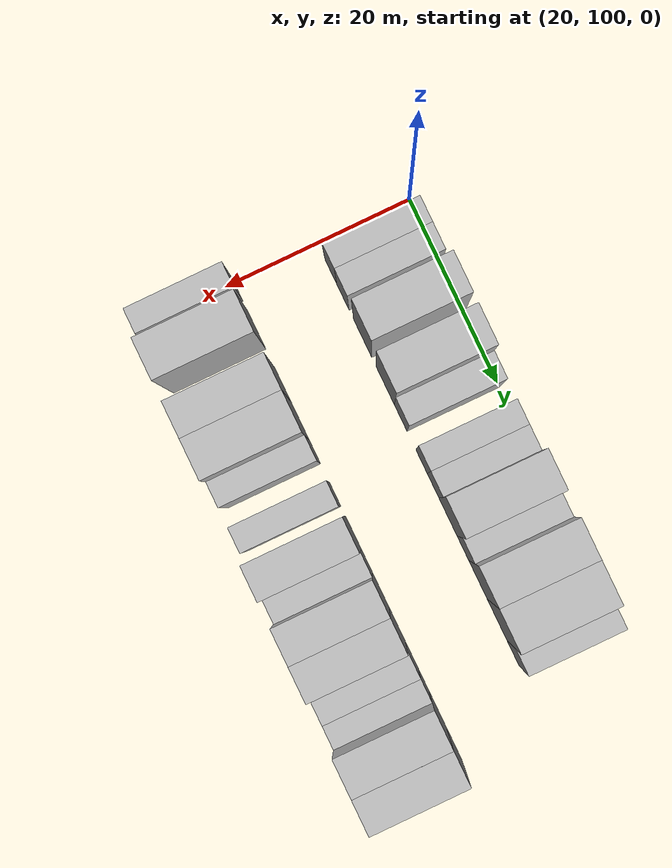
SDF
<sdf version="1.6">
 <world name="default">
  <model name="building_79">
   <static>1</static>
   <pose>25.0000 103.1300 0 0.000000 0.000000 0.000000</pose>
   <link name="link">
    <pose>0 0 3.00 0 0 0</pose>
    <collision name="collision"><geometry><box><size>10.0000 2.6886 6.0000</size></box></geometry></collision>
    <visual name="visual">
     <cast_shadows>0</cast_shadows>
     <geometry><box><size>10.0000 2.6886 6.0000</size></box></geometry>
     <material>
      <script>
       <uri>model://HANNAS_wall/materials/scripts</uri>
       <uri>model://HANNAS_wall/materials/textures</uri>
       <name>vrc/HANNAS_wall</name>
      </script>
     </material>
    </visual>
   </link>
  </model>
  <model name="building_80">
   <static>1</static>
   <pose>25.0000 105.8690 0 0.000000 0.000000 0.000000</pose>
   <link name="link">
    <pose>0 0 3.00 0 0 0</pose>
    <collision name="collision"><geometry><box><size>10.0000 2.7893 6.0000</size></box></geometry></collision>
    <visual name="visual">
     <cast_shadows>0</cast_shadows>
     <geometry><box><size>10.0000 2.7893 6.0000</size></box></geometry>
     <material>
      <script>
       <uri>model://HANNAS_wall/materials/scripts</uri>
       <uri>model://HANNAS_wall/materials/textures</uri>
       <name>vrc/HANNAS_wall</name>
      </script>
     </material>
    </visual>
   </link>
  </model>
  <model name="building_81">
   <static>1</static>
   <pose>25.0000 110.3339 0 0.000000 0.000000 0.000000</pose>
   <link name="link">
    <pose>0 0 4.50 0 0 0</pose>
    <collision name="collision"><geometry><box><size>10.0000 4.1406 9.0000</size></box></geometry></collision>
    <visual name="visual">
     <cast_shadows>0</cast_shadows>
     <geometry><box><size>10.0000 4.1406 9.0000</size></box></geometry>
     <material>
      <script>
       <uri>model://HANNAS_wall/materials/scripts</uri>
       <uri>model://HANNAS_wall/materials/textures</uri>
       <name>vrc/HANNAS_wall</name>
      </script>
     </material>
    </visual>
   </link>
  </model>
  <model name="building_82">
   <static>1</static>
   <pose>25.0000 115.4759 0 0.000000 0.000000 0.000000</pose>
   <link name="link">
    <pose>0 0 4.50 0 0 0</pose>
    <collision name="collision"><geometry><box><size>10.0000 4.1433 9.0000</size></box></geometry></collision>
    <visual name="visual">
     <cast_shadows>0</cast_shadows>
     <geometry><box><size>10.0000 4.1433 9.0000</size></box></geometry>
     <material>
      <script>
       <uri>model://HANNAS_wall/materials/scripts</uri>
       <uri>model://HANNAS_wall/materials/textures</uri>
       <name>vrc/HANNAS_wall</name>
      </script>
     </material>
    </visual>
   </link>
  </model>
  <model name="building_83">
   <static>1</static>
   <pose>25.0000 118.9860 0 0.000000 0.000000 0.000000</pose>
   <link name="link">
    <pose>0 0 3.00 0 0 0</pose>
    <collision name="collision"><geometry><box><size>10.0000 2.8769 6.0000</size></box></geometry></collision>
    <visual name="visual">
     <cast_shadows>0</cast_shadows>
     <geometry><box><size>10.0000 2.8769 6.0000</size></box></geometry>
     <material>
      <script>
       <uri>model://HANNAS_wall/materials/scripts</uri>
       <uri>model://HANNAS_wall/materials/textures</uri>
       <name>vrc/HANNAS_wall</name>
      </script>
     </material>
    </visual>
   </link>
  </model>
  <model name="building_84">
   <static>1</static>
   <pose>25.0000 123.7217 0 0.000000 0.000000 0.000000</pose>
   <link name="link">
    <pose>0 0 3.00 0 0 0</pose>
    <collision name="collision"><geometry><box><size>10.0000 2.5944 6.0000</size></box></geometry></collision>
    <visual name="visual">
     <cast_shadows>0</cast_shadows>
     <geometry><box><size>10.0000 2.5944 6.0000</size></box></geometry>
     <material>
      <script>
       <uri>model://HANNAS_wall/materials/scripts</uri>
       <uri>model://HANNAS_wall/materials/textures</uri>
       <name>vrc/HANNAS_wall</name>
      </script>
     </material>
    </visual>
   </link>
  </model>
  <model name="building_85">
   <static>1</static>
   <pose>25.0000 126.3316 0 0.000000 0.000000 0.000000</pose>
   <link name="link">
    <pose>0 0 3.00 0 0 0</pose>
    <collision name="collision"><geometry><box><size>10.0000 2.6255 6.0000</size></box></geometry></collision>
    <visual name="visual">
     <cast_shadows>0</cast_shadows>
     <geometry><box><size>10.0000 2.6255 6.0000</size></box></geometry>
     <material>
      <script>
       <uri>model://HANNAS_wall/materials/scripts</uri>
       <uri>model://HANNAS_wall/materials/textures</uri>
       <name>vrc/HANNAS_wall</name>
      </script>
     </material>
    </visual>
   </link>
  </model>
  <model name="building_86">
   <static>1</static>
   <pose>25.0000 129.7086 0 0.000000 0.000000 0.000000</pose>
   <link name="link">
    <pose>0 0 4.50 0 0 0</pose>
    <collision name="collision"><geometry><box><size>10.0000 4.1285 9.0000</size></box></geometry></collision>
    <visual name="visual">
     <cast_shadows>0</cast_shadows>
     <geometry><box><size>10.0000 4.1285 9.0000</size></box></geometry>
     <material>
      <script>
       <uri>model://HANNAS_wall/materials/scripts</uri>
       <uri>model://HANNAS_wall/materials/textures</uri>
       <name>vrc/HANNAS_wall</name>
      </script>
     </material>
    </visual>
   </link>
  </model>
  <model name="building_87">
   <static>1</static>
   <pose>25.0000 133.0878 0 0.000000 0.000000 0.000000</pose>
   <link name="link">
    <pose>0 0 3.00 0 0 0</pose>
    <collision name="collision"><geometry><box><size>10.0000 2.6299 6.0000</size></box></geometry></collision>
    <visual name="visual">
     <cast_shadows>0</cast_shadows>
     <geometry><box><size>10.0000 2.6299 6.0000</size></box></geometry>
     <material>
      <script>
       <uri>model://HANNAS_wall/materials/scripts</uri>
       <uri>model://HANNAS_wall/materials/textures</uri>
       <name>vrc/HANNAS_wall</name>
      </script>
     </material>
    </visual>
   </link>
  </model>
  <model name="building_88">
   <static>1</static>
   <pose>25.0000 136.4914 0 0.000000 0.000000 0.000000</pose>
   <link name="link">
    <pose>0 0 4.50 0 0 0</pose>
    <collision name="collision"><geometry><box><size>10.0000 4.1773 9.0000</size></box></geometry></collision>
    <visual name="visual">
     <cast_shadows>0</cast_shadows>
     <geometry><box><size>10.0000 4.1773 9.0000</size></box></geometry>
     <material>
      <script>
       <uri>model://HANNAS_wall/materials/scripts</uri>
       <uri>model://HANNAS_wall/materials/textures</uri>
       <name>vrc/HANNAS_wall</name>
      </script>
     </material>
    </visual>
   </link>
  </model>
  <model name="building_89">
   <static>1</static>
   <pose>25.0000 140.8173 0 0.000000 0.000000 0.000000</pose>
   <link name="link">
    <pose>0 0 4.50 0 0 0</pose>
    <collision name="collision"><geometry><box><size>10.0000 4.4745 9.0000</size></box></geometry></collision>
    <visual name="visual">
     <cast_shadows>0</cast_shadows>
     <geometry><box><size>10.0000 4.4745 9.0000</size></box></geometry>
     <material>
      <script>
       <uri>model://HANNAS_wall/materials/scripts</uri>
       <uri>model://HANNAS_wall/materials/textures</uri>
       <name>vrc/HANNAS_wall</name>
      </script>
     </material>
    </visual>
   </link>
  </model>
  <model name="building_90">
   <static>1</static>
   <pose>25.0000 144.4199 0 0.000000 0.000000 0.000000</pose>
   <link name="link">
    <pose>0 0 3.00 0 0 0</pose>
    <collision name="collision"><geometry><box><size>10.0000 2.7306 6.0000</size></box></geometry></collision>
    <visual name="visual">
     <cast_shadows>0</cast_shadows>
     <geometry><box><size>10.0000 2.7306 6.0000</size></box></geometry>
     <material>
      <script>
       <uri>model://HANNAS_wall/materials/scripts</uri>
       <uri>model://HANNAS_wall/materials/textures</uri>
       <name>vrc/HANNAS_wall</name>
      </script>
     </material>
    </visual>
   </link>
  </model>
  <model name="building_181">
   <static>1</static>
   <pose>44.0000 100.7286 0 0.000000 0.000000 0.000000</pose>
   <link name="link">
    <pose>0 0 3.00 0 0 0</pose>
    <collision name="collision"><geometry><box><size>10.0000 2.5680 6.0000</size></box></geometry></collision>
    <visual name="visual">
     <cast_shadows>0</cast_shadows>
     <geometry><box><size>10.0000 2.5680 6.0000</size></box></geometry>
     <material>
      <script>
       <uri>model://HANNAS_wall/materials/scripts</uri>
       <uri>model://HANNAS_wall/materials/textures</uri>
       <name>vrc/HANNAS_wall</name>
      </script>
     </material>
    </visual>
   </link>
  </model>
  <model name="building_182">
   <static>1</static>
   <pose>44.0000 105.1125 0 0.000000 0.000000 0.000000</pose>
   <link name="link">
    <pose>0 0 4.50 0 0 0</pose>
    <collision name="collision"><geometry><box><size>10.0000 4.1998 9.0000</size></box></geometry></collision>
    <visual name="visual">
     <cast_shadows>0</cast_shadows>
     <geometry><box><size>10.0000 4.1998 9.0000</size></box></geometry>
     <material>
      <script>
       <uri>model://HANNAS_wall/materials/scripts</uri>
       <uri>model://HANNAS_wall/materials/textures</uri>
       <name>vrc/HANNAS_wall</name>
      </script>
     </material>
    </visual>
   </link>
  </model>
  <model name="building_183">
   <static>1</static>
   <pose>44.0000 111.0483 0 0.000000 0.000000 0.000000</pose>
   <link name="link">
    <pose>0 0 4.50 0 0 0</pose>
    <collision name="collision"><geometry><box><size>10.0000 3.6718 9.0000</size></box></geometry></collision>
    <visual name="visual">
     <cast_shadows>0</cast_shadows>
     <geometry><box><size>10.0000 3.6718 9.0000</size></box></geometry>
     <material>
      <script>
       <uri>model://HANNAS_wall/materials/scripts</uri>
       <uri>model://HANNAS_wall/materials/textures</uri>
       <name>vrc/HANNAS_wall</name>
      </script>
     </material>
    </visual>
   </link>
  </model>
  <model name="building_184">
   <static>1</static>
   <pose>44.0000 114.9545 0 0.000000 0.000000 0.000000</pose>
   <link name="link">
    <pose>0 0 4.50 0 0 0</pose>
    <collision name="collision"><geometry><box><size>10.0000 4.1406 9.0000</size></box></geometry></collision>
    <visual name="visual">
     <cast_shadows>0</cast_shadows>
     <geometry><box><size>10.0000 4.1406 9.0000</size></box></geometry>
     <material>
      <script>
       <uri>model://HANNAS_wall/materials/scripts</uri>
       <uri>model://HANNAS_wall/materials/textures</uri>
       <name>vrc/HANNAS_wall</name>
      </script>
     </material>
    </visual>
   </link>
  </model>
  <model name="building_185">
   <static>1</static>
   <pose>44.0000 118.3417 0 0.000000 0.000000 0.000000</pose>
   <link name="link">
    <pose>0 0 3.00 0 0 0</pose>
    <collision name="collision"><geometry><box><size>10.0000 2.6338 6.0000</size></box></geometry></collision>
    <visual name="visual">
     <cast_shadows>0</cast_shadows>
     <geometry><box><size>10.0000 2.6338 6.0000</size></box></geometry>
     <material>
      <script>
       <uri>model://HANNAS_wall/materials/scripts</uri>
       <uri>model://HANNAS_wall/materials/textures</uri>
       <name>vrc/HANNAS_wall</name>
      </script>
     </material>
    </visual>
   </link>
  </model>
  <model name="building_186">
   <static>1</static>
   <pose>44.0000 122.9760 0 0.000000 0.000000 0.000000</pose>
   <link name="link">
    <pose>0 0 3.00 0 0 0</pose>
    <collision name="collision"><geometry><box><size>10.0000 2.6349 6.0000</size></box></geometry></collision>
    <visual name="visual">
     <cast_shadows>0</cast_shadows>
     <geometry><box><size>10.0000 2.6349 6.0000</size></box></geometry>
     <material>
      <script>
       <uri>model://HANNAS_wall/materials/scripts</uri>
       <uri>model://HANNAS_wall/materials/textures</uri>
       <name>vrc/HANNAS_wall</name>
      </script>
     </material>
    </visual>
   </link>
  </model>
  <model name="building_187">
   <static>1</static>
   <pose>44.0000 127.0959 0 0.000000 0.000000 0.000000</pose>
   <link name="link">
    <pose>0 0 4.50 0 0 0</pose>
    <collision name="collision"><geometry><box><size>10.0000 3.6048 9.0000</size></box></geometry></collision>
    <visual name="visual">
     <cast_shadows>0</cast_shadows>
     <geometry><box><size>10.0000 3.6048 9.0000</size></box></geometry>
     <material>
      <script>
       <uri>model://HANNAS_wall/materials/scripts</uri>
       <uri>model://HANNAS_wall/materials/textures</uri>
       <name>vrc/HANNAS_wall</name>
      </script>
     </material>
    </visual>
   </link>
  </model>
  <model name="building_188">
   <static>1</static>
   <pose>44.0000 130.1757 0 0.000000 0.000000 0.000000</pose>
   <link name="link">
    <pose>0 0 3.00 0 0 0</pose>
    <collision name="collision"><geometry><box><size>10.0000 2.5547 6.0000</size></box></geometry></collision>
    <visual name="visual">
     <cast_shadows>0</cast_shadows>
     <geometry><box><size>10.0000 2.5547 6.0000</size></box></geometry>
     <material>
      <script>
       <uri>model://HANNAS_wall/materials/scripts</uri>
       <uri>model://HANNAS_wall/materials/textures</uri>
       <name>vrc/HANNAS_wall</name>
      </script>
     </material>
    </visual>
   </link>
  </model>
  <model name="building_189">
   <static>1</static>
   <pose>44.0000 133.3133 0 0.000000 0.000000 0.000000</pose>
   <link name="link">
    <pose>0 0 4.50 0 0 0</pose>
    <collision name="collision"><geometry><box><size>10.0000 3.7205 9.0000</size></box></geometry></collision>
    <visual name="visual">
     <cast_shadows>0</cast_shadows>
     <geometry><box><size>10.0000 3.7205 9.0000</size></box></geometry>
     <material>
      <script>
       <uri>model://HANNAS_wall/materials/scripts</uri>
       <uri>model://HANNAS_wall/materials/textures</uri>
       <name>vrc/HANNAS_wall</name>
      </script>
     </material>
    </visual>
   </link>
  </model>
  <model name="building_190">
   <static>1</static>
   <pose>44.0000 137.0018 0 0.000000 0.000000 0.000000</pose>
   <link name="link">
    <pose>0 0 4.50 0 0 0</pose>
    <collision name="collision"><geometry><box><size>10.0000 3.6566 9.0000</size></box></geometry></collision>
    <visual name="visual">
     <cast_shadows>0</cast_shadows>
     <geometry><box><size>10.0000 3.6566 9.0000</size></box></geometry>
     <material>
      <script>
       <uri>model://HANNAS_wall/materials/scripts</uri>
       <uri>model://HANNAS_wall/materials/textures</uri>
       <name>vrc/HANNAS_wall</name>
      </script>
     </material>
    </visual>
   </link>
  </model>
  <model name="building_191">
   <static>1</static>
   <pose>44.0000 140.2849 0 0.000000 0.000000 0.000000</pose>
   <link name="link">
    <pose>0 0 3.00 0 0 0</pose>
    <collision name="collision"><geometry><box><size>10.0000 2.9095 6.0000</size></box></geometry></collision>
    <visual name="visual">
     <cast_shadows>0</cast_shadows>
     <geometry><box><size>10.0000 2.9095 6.0000</size></box></geometry>
     <material>
      <script>
       <uri>model://HANNAS_wall/materials/scripts</uri>
       <uri>model://HANNAS_wall/materials/textures</uri>
       <name>vrc/HANNAS_wall</name>
      </script>
     </material>
    </visual>
   </link>
  </model>
  <model name="building_192">
   <static>1</static>
   <pose>44.0000 142.9453 0 0.000000 0.000000 0.000000</pose>
   <link name="link">
    <pose>0 0 3.00 0 0 0</pose>
    <collision name="collision"><geometry><box><size>10.0000 2.4113 6.0000</size></box></geometry></collision>
    <visual name="visual">
     <cast_shadows>0</cast_shadows>
     <geometry><box><size>10.0000 2.4113 6.0000</size></box></geometry>
     <material>
      <script>
       <uri>model://HANNAS_wall/materials/scripts</uri>
       <uri>model://HANNAS_wall/materials/textures</uri>
       <name>vrc/HANNAS_wall</name>
      </script>
     </material>
    </visual>
   </link>
  </model>
  <model name="building_193">
   <static>1</static>
   <pose>44.0000 146.1374 0 0.000000 0.000000 0.000000</pose>
   <link name="link">
    <pose>0 0 4.50 0 0 0</pose>
    <collision name="collision"><geometry><box><size>10.0000 3.9729 9.0000</size></box></geometry></collision>
    <visual name="visual">
     <cast_shadows>0</cast_shadows>
     <geometry><box><size>10.0000 3.9729 9.0000</size></box></geometry>
     <material>
      <script>
       <uri>model://HANNAS_wall/materials/scripts</uri>
       <uri>model://HANNAS_wall/materials/textures</uri>
       <name>vrc/HANNAS_wall</name>
      </script>
     </material>
    </visual>
   </link>
  </model>
  <model name="building_194">
   <static>1</static>
   <pose>44.0000 149.9279 0 0.000000 0.000000 0.000000</pose>
   <link name="link">
    <pose>0 0 4.50 0 0 0</pose>
    <collision name="collision"><geometry><box><size>10.0000 3.6079 9.0000</size></box></geometry></collision>
    <visual name="visual">
     <cast_shadows>0</cast_shadows>
     <geometry><box><size>10.0000 3.6079 9.0000</size></box></geometry>
     <material>
      <script>
       <uri>model://HANNAS_wall/materials/scripts</uri>
       <uri>model://HANNAS_wall/materials/textures</uri>
       <name>vrc/HANNAS_wall</name>
      </script>
     </material>
    </visual>
   </link>
  </model>
 </world>
</sdf>
